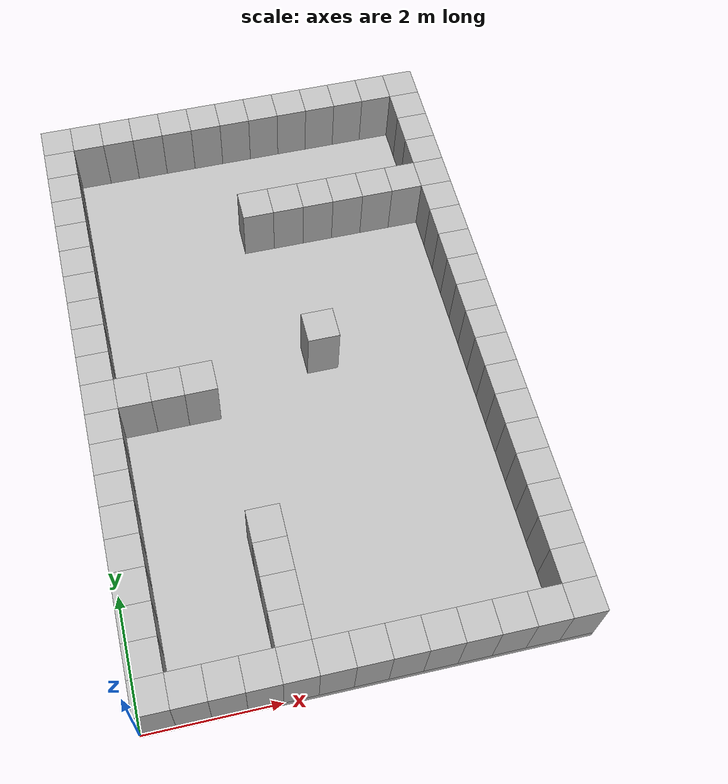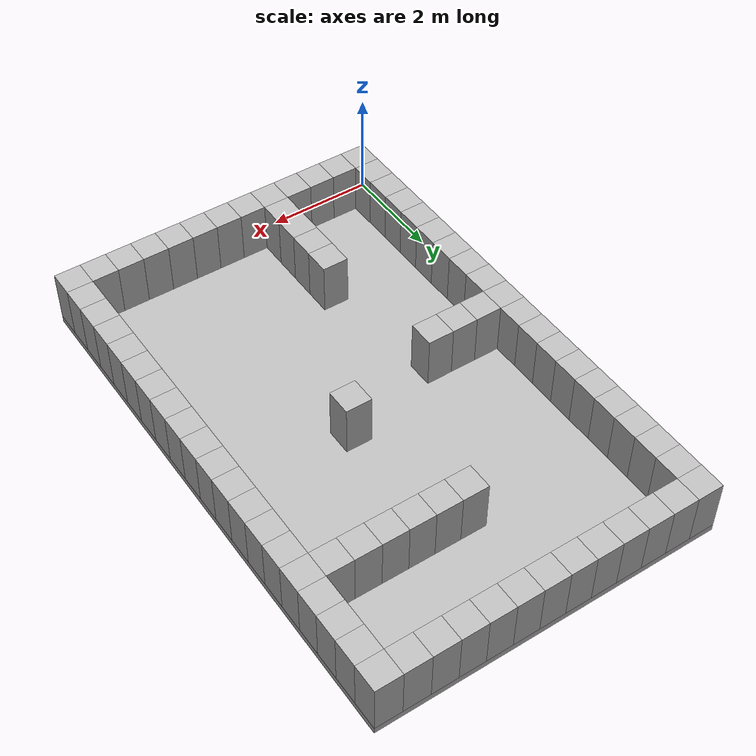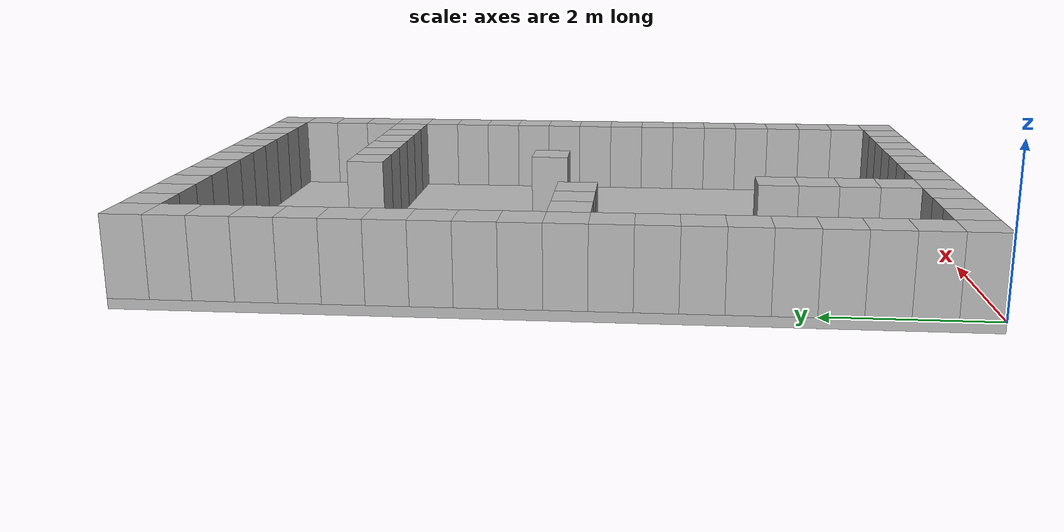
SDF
<sdf version="1.5">
  <model name="map">
    <static>1</static>
    <link name="map">
      <collision name="floor">
        <pose>3.25 5.0 -0.0625 0 0 0</pose>
        <geometry>
          <box>
            <size>6.5 10.0 0.125</size>
          </box>
        </geometry>
      </collision>
      <visual name="floor">
        <pose>3.25 5.0 -0.0625 0 0 0</pose>
        <geometry>
          <box>
            <size>6.5 10.0 0.125</size>
          </box>
        </geometry>
      </visual>
      <collision name="box_0_0">
        <pose>0.25 0.25 0.5 0 0 0</pose>
        <geometry>
          <box>
            <size>0.5 0.5 1.0</size>
          </box>
        </geometry>
      </collision>
      <visual name="box_0_0">
        <pose>0.25 0.25 0.5 0 0 0</pose>
        <geometry>
          <box>
            <size>0.5 0.5 1.0</size>
          </box>
        </geometry>
      </visual>
      <collision name="box_0_1">
        <pose>0.25 0.75 0.5 0 0 0</pose>
        <geometry>
          <box>
            <size>0.5 0.5 1.0</size>
          </box>
        </geometry>
      </collision>
      <visual name="box_0_1">
        <pose>0.25 0.75 0.5 0 0 0</pose>
        <geometry>
          <box>
            <size>0.5 0.5 1.0</size>
          </box>
        </geometry>
      </visual>
      <collision name="box_0_2">
        <pose>0.25 1.25 0.5 0 0 0</pose>
        <geometry>
          <box>
            <size>0.5 0.5 1.0</size>
          </box>
        </geometry>
      </collision>
      <visual name="box_0_2">
        <pose>0.25 1.25 0.5 0 0 0</pose>
        <geometry>
          <box>
            <size>0.5 0.5 1.0</size>
          </box>
        </geometry>
      </visual>
      <collision name="box_0_3">
        <pose>0.25 1.75 0.5 0 0 0</pose>
        <geometry>
          <box>
            <size>0.5 0.5 1.0</size>
          </box>
        </geometry>
      </collision>
      <visual name="box_0_3">
        <pose>0.25 1.75 0.5 0 0 0</pose>
        <geometry>
          <box>
            <size>0.5 0.5 1.0</size>
          </box>
        </geometry>
      </visual>
      <collision name="box_0_4">
        <pose>0.25 2.25 0.5 0 0 0</pose>
        <geometry>
          <box>
            <size>0.5 0.5 1.0</size>
          </box>
        </geometry>
      </collision>
      <visual name="box_0_4">
        <pose>0.25 2.25 0.5 0 0 0</pose>
        <geometry>
          <box>
            <size>0.5 0.5 1.0</size>
          </box>
        </geometry>
      </visual>
      <collision name="box_0_5">
        <pose>0.25 2.75 0.5 0 0 0</pose>
        <geometry>
          <box>
            <size>0.5 0.5 1.0</size>
          </box>
        </geometry>
      </collision>
      <visual name="box_0_5">
        <pose>0.25 2.75 0.5 0 0 0</pose>
        <geometry>
          <box>
            <size>0.5 0.5 1.0</size>
          </box>
        </geometry>
      </visual>
      <collision name="box_0_6">
        <pose>0.25 3.25 0.5 0 0 0</pose>
        <geometry>
          <box>
            <size>0.5 0.5 1.0</size>
          </box>
        </geometry>
      </collision>
      <visual name="box_0_6">
        <pose>0.25 3.25 0.5 0 0 0</pose>
        <geometry>
          <box>
            <size>0.5 0.5 1.0</size>
          </box>
        </geometry>
      </visual>
      <collision name="box_0_7">
        <pose>0.25 3.75 0.5 0 0 0</pose>
        <geometry>
          <box>
            <size>0.5 0.5 1.0</size>
          </box>
        </geometry>
      </collision>
      <visual name="box_0_7">
        <pose>0.25 3.75 0.5 0 0 0</pose>
        <geometry>
          <box>
            <size>0.5 0.5 1.0</size>
          </box>
        </geometry>
      </visual>
      <collision name="box_0_8">
        <pose>0.25 4.25 0.5 0 0 0</pose>
        <geometry>
          <box>
            <size>0.5 0.5 1.0</size>
          </box>
        </geometry>
      </collision>
      <visual name="box_0_8">
        <pose>0.25 4.25 0.5 0 0 0</pose>
        <geometry>
          <box>
            <size>0.5 0.5 1.0</size>
          </box>
        </geometry>
      </visual>
      <collision name="box_0_9">
        <pose>0.25 4.75 0.5 0 0 0</pose>
        <geometry>
          <box>
            <size>0.5 0.5 1.0</size>
          </box>
        </geometry>
      </collision>
      <visual name="box_0_9">
        <pose>0.25 4.75 0.5 0 0 0</pose>
        <geometry>
          <box>
            <size>0.5 0.5 1.0</size>
          </box>
        </geometry>
      </visual>
      <collision name="box_0_10">
        <pose>0.25 5.25 0.5 0 0 0</pose>
        <geometry>
          <box>
            <size>0.5 0.5 1.0</size>
          </box>
        </geometry>
      </collision>
      <visual name="box_0_10">
        <pose>0.25 5.25 0.5 0 0 0</pose>
        <geometry>
          <box>
            <size>0.5 0.5 1.0</size>
          </box>
        </geometry>
      </visual>
      <collision name="box_0_11">
        <pose>0.25 5.75 0.5 0 0 0</pose>
        <geometry>
          <box>
            <size>0.5 0.5 1.0</size>
          </box>
        </geometry>
      </collision>
      <visual name="box_0_11">
        <pose>0.25 5.75 0.5 0 0 0</pose>
        <geometry>
          <box>
            <size>0.5 0.5 1.0</size>
          </box>
        </geometry>
      </visual>
      <collision name="box_0_12">
        <pose>0.25 6.25 0.5 0 0 0</pose>
        <geometry>
          <box>
            <size>0.5 0.5 1.0</size>
          </box>
        </geometry>
      </collision>
      <visual name="box_0_12">
        <pose>0.25 6.25 0.5 0 0 0</pose>
        <geometry>
          <box>
            <size>0.5 0.5 1.0</size>
          </box>
        </geometry>
      </visual>
      <collision name="box_0_13">
        <pose>0.25 6.75 0.5 0 0 0</pose>
        <geometry>
          <box>
            <size>0.5 0.5 1.0</size>
          </box>
        </geometry>
      </collision>
      <visual name="box_0_13">
        <pose>0.25 6.75 0.5 0 0 0</pose>
        <geometry>
          <box>
            <size>0.5 0.5 1.0</size>
          </box>
        </geometry>
      </visual>
      <collision name="box_0_14">
        <pose>0.25 7.25 0.5 0 0 0</pose>
        <geometry>
          <box>
            <size>0.5 0.5 1.0</size>
          </box>
        </geometry>
      </collision>
      <visual name="box_0_14">
        <pose>0.25 7.25 0.5 0 0 0</pose>
        <geometry>
          <box>
            <size>0.5 0.5 1.0</size>
          </box>
        </geometry>
      </visual>
      <collision name="box_0_15">
        <pose>0.25 7.75 0.5 0 0 0</pose>
        <geometry>
          <box>
            <size>0.5 0.5 1.0</size>
          </box>
        </geometry>
      </collision>
      <visual name="box_0_15">
        <pose>0.25 7.75 0.5 0 0 0</pose>
        <geometry>
          <box>
            <size>0.5 0.5 1.0</size>
          </box>
        </geometry>
      </visual>
      <collision name="box_0_16">
        <pose>0.25 8.25 0.5 0 0 0</pose>
        <geometry>
          <box>
            <size>0.5 0.5 1.0</size>
          </box>
        </geometry>
      </collision>
      <visual name="box_0_16">
        <pose>0.25 8.25 0.5 0 0 0</pose>
        <geometry>
          <box>
            <size>0.5 0.5 1.0</size>
          </box>
        </geometry>
      </visual>
      <collision name="box_0_17">
        <pose>0.25 8.75 0.5 0 0 0</pose>
        <geometry>
          <box>
            <size>0.5 0.5 1.0</size>
          </box>
        </geometry>
      </collision>
      <visual name="box_0_17">
        <pose>0.25 8.75 0.5 0 0 0</pose>
        <geometry>
          <box>
            <size>0.5 0.5 1.0</size>
          </box>
        </geometry>
      </visual>
      <collision name="box_0_18">
        <pose>0.25 9.25 0.5 0 0 0</pose>
        <geometry>
          <box>
            <size>0.5 0.5 1.0</size>
          </box>
        </geometry>
      </collision>
      <visual name="box_0_18">
        <pose>0.25 9.25 0.5 0 0 0</pose>
        <geometry>
          <box>
            <size>0.5 0.5 1.0</size>
          </box>
        </geometry>
      </visual>
      <collision name="box_0_19">
        <pose>0.25 9.75 0.5 0 0 0</pose>
        <geometry>
          <box>
            <size>0.5 0.5 1.0</size>
          </box>
        </geometry>
      </collision>
      <visual name="box_0_19">
        <pose>0.25 9.75 0.5 0 0 0</pose>
        <geometry>
          <box>
            <size>0.5 0.5 1.0</size>
          </box>
        </geometry>
      </visual>
      <collision name="box_1_0">
        <pose>0.75 0.25 0.5 0 0 0</pose>
        <geometry>
          <box>
            <size>0.5 0.5 1.0</size>
          </box>
        </geometry>
      </collision>
      <visual name="box_1_0">
        <pose>0.75 0.25 0.5 0 0 0</pose>
        <geometry>
          <box>
            <size>0.5 0.5 1.0</size>
          </box>
        </geometry>
      </visual>
      <collision name="box_1_9">
        <pose>0.75 4.75 0.5 0 0 0</pose>
        <geometry>
          <box>
            <size>0.5 0.5 1.0</size>
          </box>
        </geometry>
      </collision>
      <visual name="box_1_9">
        <pose>0.75 4.75 0.5 0 0 0</pose>
        <geometry>
          <box>
            <size>0.5 0.5 1.0</size>
          </box>
        </geometry>
      </visual>
      <collision name="box_1_19">
        <pose>0.75 9.75 0.5 0 0 0</pose>
        <geometry>
          <box>
            <size>0.5 0.5 1.0</size>
          </box>
        </geometry>
      </collision>
      <visual name="box_1_19">
        <pose>0.75 9.75 0.5 0 0 0</pose>
        <geometry>
          <box>
            <size>0.5 0.5 1.0</size>
          </box>
        </geometry>
      </visual>
      <collision name="box_2_0">
        <pose>1.25 0.25 0.5 0 0 0</pose>
        <geometry>
          <box>
            <size>0.5 0.5 1.0</size>
          </box>
        </geometry>
      </collision>
      <visual name="box_2_0">
        <pose>1.25 0.25 0.5 0 0 0</pose>
        <geometry>
          <box>
            <size>0.5 0.5 1.0</size>
          </box>
        </geometry>
      </visual>
      <collision name="box_2_9">
        <pose>1.25 4.75 0.5 0 0 0</pose>
        <geometry>
          <box>
            <size>0.5 0.5 1.0</size>
          </box>
        </geometry>
      </collision>
      <visual name="box_2_9">
        <pose>1.25 4.75 0.5 0 0 0</pose>
        <geometry>
          <box>
            <size>0.5 0.5 1.0</size>
          </box>
        </geometry>
      </visual>
      <collision name="box_2_19">
        <pose>1.25 9.75 0.5 0 0 0</pose>
        <geometry>
          <box>
            <size>0.5 0.5 1.0</size>
          </box>
        </geometry>
      </collision>
      <visual name="box_2_19">
        <pose>1.25 9.75 0.5 0 0 0</pose>
        <geometry>
          <box>
            <size>0.5 0.5 1.0</size>
          </box>
        </geometry>
      </visual>
      <collision name="box_3_0">
        <pose>1.75 0.25 0.5 0 0 0</pose>
        <geometry>
          <box>
            <size>0.5 0.5 1.0</size>
          </box>
        </geometry>
      </collision>
      <visual name="box_3_0">
        <pose>1.75 0.25 0.5 0 0 0</pose>
        <geometry>
          <box>
            <size>0.5 0.5 1.0</size>
          </box>
        </geometry>
      </visual>
      <collision name="box_3_9">
        <pose>1.75 4.75 0.5 0 0 0</pose>
        <geometry>
          <box>
            <size>0.5 0.5 1.0</size>
          </box>
        </geometry>
      </collision>
      <visual name="box_3_9">
        <pose>1.75 4.75 0.5 0 0 0</pose>
        <geometry>
          <box>
            <size>0.5 0.5 1.0</size>
          </box>
        </geometry>
      </visual>
      <collision name="box_3_19">
        <pose>1.75 9.75 0.5 0 0 0</pose>
        <geometry>
          <box>
            <size>0.5 0.5 1.0</size>
          </box>
        </geometry>
      </collision>
      <visual name="box_3_19">
        <pose>1.75 9.75 0.5 0 0 0</pose>
        <geometry>
          <box>
            <size>0.5 0.5 1.0</size>
          </box>
        </geometry>
      </visual>
      <collision name="box_4_0">
        <pose>2.25 0.25 0.5 0 0 0</pose>
        <geometry>
          <box>
            <size>0.5 0.5 1.0</size>
          </box>
        </geometry>
      </collision>
      <visual name="box_4_0">
        <pose>2.25 0.25 0.5 0 0 0</pose>
        <geometry>
          <box>
            <size>0.5 0.5 1.0</size>
          </box>
        </geometry>
      </visual>
      <collision name="box_4_1">
        <pose>2.25 0.75 0.5 0 0 0</pose>
        <geometry>
          <box>
            <size>0.5 0.5 1.0</size>
          </box>
        </geometry>
      </collision>
      <visual name="box_4_1">
        <pose>2.25 0.75 0.5 0 0 0</pose>
        <geometry>
          <box>
            <size>0.5 0.5 1.0</size>
          </box>
        </geometry>
      </visual>
      <collision name="box_4_2">
        <pose>2.25 1.25 0.5 0 0 0</pose>
        <geometry>
          <box>
            <size>0.5 0.5 1.0</size>
          </box>
        </geometry>
      </collision>
      <visual name="box_4_2">
        <pose>2.25 1.25 0.5 0 0 0</pose>
        <geometry>
          <box>
            <size>0.5 0.5 1.0</size>
          </box>
        </geometry>
      </visual>
      <collision name="box_4_3">
        <pose>2.25 1.75 0.5 0 0 0</pose>
        <geometry>
          <box>
            <size>0.5 0.5 1.0</size>
          </box>
        </geometry>
      </collision>
      <visual name="box_4_3">
        <pose>2.25 1.75 0.5 0 0 0</pose>
        <geometry>
          <box>
            <size>0.5 0.5 1.0</size>
          </box>
        </geometry>
      </visual>
      <collision name="box_4_4">
        <pose>2.25 2.25 0.5 0 0 0</pose>
        <geometry>
          <box>
            <size>0.5 0.5 1.0</size>
          </box>
        </geometry>
      </collision>
      <visual name="box_4_4">
        <pose>2.25 2.25 0.5 0 0 0</pose>
        <geometry>
          <box>
            <size>0.5 0.5 1.0</size>
          </box>
        </geometry>
      </visual>
      <collision name="box_4_19">
        <pose>2.25 9.75 0.5 0 0 0</pose>
        <geometry>
          <box>
            <size>0.5 0.5 1.0</size>
          </box>
        </geometry>
      </collision>
      <visual name="box_4_19">
        <pose>2.25 9.75 0.5 0 0 0</pose>
        <geometry>
          <box>
            <size>0.5 0.5 1.0</size>
          </box>
        </geometry>
      </visual>
      <collision name="box_5_0">
        <pose>2.75 0.25 0.5 0 0 0</pose>
        <geometry>
          <box>
            <size>0.5 0.5 1.0</size>
          </box>
        </geometry>
      </collision>
      <visual name="box_5_0">
        <pose>2.75 0.25 0.5 0 0 0</pose>
        <geometry>
          <box>
            <size>0.5 0.5 1.0</size>
          </box>
        </geometry>
      </visual>
      <collision name="box_5_19">
        <pose>2.75 9.75 0.5 0 0 0</pose>
        <geometry>
          <box>
            <size>0.5 0.5 1.0</size>
          </box>
        </geometry>
      </collision>
      <visual name="box_5_19">
        <pose>2.75 9.75 0.5 0 0 0</pose>
        <geometry>
          <box>
            <size>0.5 0.5 1.0</size>
          </box>
        </geometry>
      </visual>
      <collision name="box_6_0">
        <pose>3.25 0.25 0.5 0 0 0</pose>
        <geometry>
          <box>
            <size>0.5 0.5 1.0</size>
          </box>
        </geometry>
      </collision>
      <visual name="box_6_0">
        <pose>3.25 0.25 0.5 0 0 0</pose>
        <geometry>
          <box>
            <size>0.5 0.5 1.0</size>
          </box>
        </geometry>
      </visual>
      <collision name="box_6_15">
        <pose>3.25 7.75 0.5 0 0 0</pose>
        <geometry>
          <box>
            <size>0.5 0.5 1.0</size>
          </box>
        </geometry>
      </collision>
      <visual name="box_6_15">
        <pose>3.25 7.75 0.5 0 0 0</pose>
        <geometry>
          <box>
            <size>0.5 0.5 1.0</size>
          </box>
        </geometry>
      </visual>
      <collision name="box_6_19">
        <pose>3.25 9.75 0.5 0 0 0</pose>
        <geometry>
          <box>
            <size>0.5 0.5 1.0</size>
          </box>
        </geometry>
      </collision>
      <visual name="box_6_19">
        <pose>3.25 9.75 0.5 0 0 0</pose>
        <geometry>
          <box>
            <size>0.5 0.5 1.0</size>
          </box>
        </geometry>
      </visual>
      <collision name="box_7_0">
        <pose>3.75 0.25 0.5 0 0 0</pose>
        <geometry>
          <box>
            <size>0.5 0.5 1.0</size>
          </box>
        </geometry>
      </collision>
      <visual name="box_7_0">
        <pose>3.75 0.25 0.5 0 0 0</pose>
        <geometry>
          <box>
            <size>0.5 0.5 1.0</size>
          </box>
        </geometry>
      </visual>
      <collision name="box_7_10">
        <pose>3.75 5.25 0.5 0 0 0</pose>
        <geometry>
          <box>
            <size>0.5 0.5 1.0</size>
          </box>
        </geometry>
      </collision>
      <visual name="box_7_10">
        <pose>3.75 5.25 0.5 0 0 0</pose>
        <geometry>
          <box>
            <size>0.5 0.5 1.0</size>
          </box>
        </geometry>
      </visual>
      <collision name="box_7_15">
        <pose>3.75 7.75 0.5 0 0 0</pose>
        <geometry>
          <box>
            <size>0.5 0.5 1.0</size>
          </box>
        </geometry>
      </collision>
      <visual name="box_7_15">
        <pose>3.75 7.75 0.5 0 0 0</pose>
        <geometry>
          <box>
            <size>0.5 0.5 1.0</size>
          </box>
        </geometry>
      </visual>
      <collision name="box_7_19">
        <pose>3.75 9.75 0.5 0 0 0</pose>
        <geometry>
          <box>
            <size>0.5 0.5 1.0</size>
          </box>
        </geometry>
      </collision>
      <visual name="box_7_19">
        <pose>3.75 9.75 0.5 0 0 0</pose>
        <geometry>
          <box>
            <size>0.5 0.5 1.0</size>
          </box>
        </geometry>
      </visual>
      <collision name="box_8_0">
        <pose>4.25 0.25 0.5 0 0 0</pose>
        <geometry>
          <box>
            <size>0.5 0.5 1.0</size>
          </box>
        </geometry>
      </collision>
      <visual name="box_8_0">
        <pose>4.25 0.25 0.5 0 0 0</pose>
        <geometry>
          <box>
            <size>0.5 0.5 1.0</size>
          </box>
        </geometry>
      </visual>
      <collision name="box_8_15">
        <pose>4.25 7.75 0.5 0 0 0</pose>
        <geometry>
          <box>
            <size>0.5 0.5 1.0</size>
          </box>
        </geometry>
      </collision>
      <visual name="box_8_15">
        <pose>4.25 7.75 0.5 0 0 0</pose>
        <geometry>
          <box>
            <size>0.5 0.5 1.0</size>
          </box>
        </geometry>
      </visual>
      <collision name="box_8_19">
        <pose>4.25 9.75 0.5 0 0 0</pose>
        <geometry>
          <box>
            <size>0.5 0.5 1.0</size>
          </box>
        </geometry>
      </collision>
      <visual name="box_8_19">
        <pose>4.25 9.75 0.5 0 0 0</pose>
        <geometry>
          <box>
            <size>0.5 0.5 1.0</size>
          </box>
        </geometry>
      </visual>
      <collision name="box_9_0">
        <pose>4.75 0.25 0.5 0 0 0</pose>
        <geometry>
          <box>
            <size>0.5 0.5 1.0</size>
          </box>
        </geometry>
      </collision>
      <visual name="box_9_0">
        <pose>4.75 0.25 0.5 0 0 0</pose>
        <geometry>
          <box>
            <size>0.5 0.5 1.0</size>
          </box>
        </geometry>
      </visual>
      <collision name="box_9_15">
        <pose>4.75 7.75 0.5 0 0 0</pose>
        <geometry>
          <box>
            <size>0.5 0.5 1.0</size>
          </box>
        </geometry>
      </collision>
      <visual name="box_9_15">
        <pose>4.75 7.75 0.5 0 0 0</pose>
        <geometry>
          <box>
            <size>0.5 0.5 1.0</size>
          </box>
        </geometry>
      </visual>
      <collision name="box_9_19">
        <pose>4.75 9.75 0.5 0 0 0</pose>
        <geometry>
          <box>
            <size>0.5 0.5 1.0</size>
          </box>
        </geometry>
      </collision>
      <visual name="box_9_19">
        <pose>4.75 9.75 0.5 0 0 0</pose>
        <geometry>
          <box>
            <size>0.5 0.5 1.0</size>
          </box>
        </geometry>
      </visual>
      <collision name="box_10_0">
        <pose>5.25 0.25 0.5 0 0 0</pose>
        <geometry>
          <box>
            <size>0.5 0.5 1.0</size>
          </box>
        </geometry>
      </collision>
      <visual name="box_10_0">
        <pose>5.25 0.25 0.5 0 0 0</pose>
        <geometry>
          <box>
            <size>0.5 0.5 1.0</size>
          </box>
        </geometry>
      </visual>
      <collision name="box_10_15">
        <pose>5.25 7.75 0.5 0 0 0</pose>
        <geometry>
          <box>
            <size>0.5 0.5 1.0</size>
          </box>
        </geometry>
      </collision>
      <visual name="box_10_15">
        <pose>5.25 7.75 0.5 0 0 0</pose>
        <geometry>
          <box>
            <size>0.5 0.5 1.0</size>
          </box>
        </geometry>
      </visual>
      <collision name="box_10_19">
        <pose>5.25 9.75 0.5 0 0 0</pose>
        <geometry>
          <box>
            <size>0.5 0.5 1.0</size>
          </box>
        </geometry>
      </collision>
      <visual name="box_10_19">
        <pose>5.25 9.75 0.5 0 0 0</pose>
        <geometry>
          <box>
            <size>0.5 0.5 1.0</size>
          </box>
        </geometry>
      </visual>
      <collision name="box_11_0">
        <pose>5.75 0.25 0.5 0 0 0</pose>
        <geometry>
          <box>
            <size>0.5 0.5 1.0</size>
          </box>
        </geometry>
      </collision>
      <visual name="box_11_0">
        <pose>5.75 0.25 0.5 0 0 0</pose>
        <geometry>
          <box>
            <size>0.5 0.5 1.0</size>
          </box>
        </geometry>
      </visual>
      <collision name="box_11_15">
        <pose>5.75 7.75 0.5 0 0 0</pose>
        <geometry>
          <box>
            <size>0.5 0.5 1.0</size>
          </box>
        </geometry>
      </collision>
      <visual name="box_11_15">
        <pose>5.75 7.75 0.5 0 0 0</pose>
        <geometry>
          <box>
            <size>0.5 0.5 1.0</size>
          </box>
        </geometry>
      </visual>
      <collision name="box_11_19">
        <pose>5.75 9.75 0.5 0 0 0</pose>
        <geometry>
          <box>
            <size>0.5 0.5 1.0</size>
          </box>
        </geometry>
      </collision>
      <visual name="box_11_19">
        <pose>5.75 9.75 0.5 0 0 0</pose>
        <geometry>
          <box>
            <size>0.5 0.5 1.0</size>
          </box>
        </geometry>
      </visual>
      <collision name="box_12_0">
        <pose>6.25 0.25 0.5 0 0 0</pose>
        <geometry>
          <box>
            <size>0.5 0.5 1.0</size>
          </box>
        </geometry>
      </collision>
      <visual name="box_12_0">
        <pose>6.25 0.25 0.5 0 0 0</pose>
        <geometry>
          <box>
            <size>0.5 0.5 1.0</size>
          </box>
        </geometry>
      </visual>
      <collision name="box_12_1">
        <pose>6.25 0.75 0.5 0 0 0</pose>
        <geometry>
          <box>
            <size>0.5 0.5 1.0</size>
          </box>
        </geometry>
      </collision>
      <visual name="box_12_1">
        <pose>6.25 0.75 0.5 0 0 0</pose>
        <geometry>
          <box>
            <size>0.5 0.5 1.0</size>
          </box>
        </geometry>
      </visual>
      <collision name="box_12_2">
        <pose>6.25 1.25 0.5 0 0 0</pose>
        <geometry>
          <box>
            <size>0.5 0.5 1.0</size>
          </box>
        </geometry>
      </collision>
      <visual name="box_12_2">
        <pose>6.25 1.25 0.5 0 0 0</pose>
        <geometry>
          <box>
            <size>0.5 0.5 1.0</size>
          </box>
        </geometry>
      </visual>
      <collision name="box_12_3">
        <pose>6.25 1.75 0.5 0 0 0</pose>
        <geometry>
          <box>
            <size>0.5 0.5 1.0</size>
          </box>
        </geometry>
      </collision>
      <visual name="box_12_3">
        <pose>6.25 1.75 0.5 0 0 0</pose>
        <geometry>
          <box>
            <size>0.5 0.5 1.0</size>
          </box>
        </geometry>
      </visual>
      <collision name="box_12_4">
        <pose>6.25 2.25 0.5 0 0 0</pose>
        <geometry>
          <box>
            <size>0.5 0.5 1.0</size>
          </box>
        </geometry>
      </collision>
      <visual name="box_12_4">
        <pose>6.25 2.25 0.5 0 0 0</pose>
        <geometry>
          <box>
            <size>0.5 0.5 1.0</size>
          </box>
        </geometry>
      </visual>
      <collision name="box_12_5">
        <pose>6.25 2.75 0.5 0 0 0</pose>
        <geometry>
          <box>
            <size>0.5 0.5 1.0</size>
          </box>
        </geometry>
      </collision>
      <visual name="box_12_5">
        <pose>6.25 2.75 0.5 0 0 0</pose>
        <geometry>
          <box>
            <size>0.5 0.5 1.0</size>
          </box>
        </geometry>
      </visual>
      <collision name="box_12_6">
        <pose>6.25 3.25 0.5 0 0 0</pose>
        <geometry>
          <box>
            <size>0.5 0.5 1.0</size>
          </box>
        </geometry>
      </collision>
      <visual name="box_12_6">
        <pose>6.25 3.25 0.5 0 0 0</pose>
        <geometry>
          <box>
            <size>0.5 0.5 1.0</size>
          </box>
        </geometry>
      </visual>
      <collision name="box_12_7">
        <pose>6.25 3.75 0.5 0 0 0</pose>
        <geometry>
          <box>
            <size>0.5 0.5 1.0</size>
          </box>
        </geometry>
      </collision>
      <visual name="box_12_7">
        <pose>6.25 3.75 0.5 0 0 0</pose>
        <geometry>
          <box>
            <size>0.5 0.5 1.0</size>
          </box>
        </geometry>
      </visual>
      <collision name="box_12_8">
        <pose>6.25 4.25 0.5 0 0 0</pose>
        <geometry>
          <box>
            <size>0.5 0.5 1.0</size>
          </box>
        </geometry>
      </collision>
      <visual name="box_12_8">
        <pose>6.25 4.25 0.5 0 0 0</pose>
        <geometry>
          <box>
            <size>0.5 0.5 1.0</size>
          </box>
        </geometry>
      </visual>
      <collision name="box_12_9">
        <pose>6.25 4.75 0.5 0 0 0</pose>
        <geometry>
          <box>
            <size>0.5 0.5 1.0</size>
          </box>
        </geometry>
      </collision>
      <visual name="box_12_9">
        <pose>6.25 4.75 0.5 0 0 0</pose>
        <geometry>
          <box>
            <size>0.5 0.5 1.0</size>
          </box>
        </geometry>
      </visual>
      <collision name="box_12_10">
        <pose>6.25 5.25 0.5 0 0 0</pose>
        <geometry>
          <box>
            <size>0.5 0.5 1.0</size>
          </box>
        </geometry>
      </collision>
      <visual name="box_12_10">
        <pose>6.25 5.25 0.5 0 0 0</pose>
        <geometry>
          <box>
            <size>0.5 0.5 1.0</size>
          </box>
        </geometry>
      </visual>
      <collision name="box_12_11">
        <pose>6.25 5.75 0.5 0 0 0</pose>
        <geometry>
          <box>
            <size>0.5 0.5 1.0</size>
          </box>
        </geometry>
      </collision>
      <visual name="box_12_11">
        <pose>6.25 5.75 0.5 0 0 0</pose>
        <geometry>
          <box>
            <size>0.5 0.5 1.0</size>
          </box>
        </geometry>
      </visual>
      <collision name="box_12_12">
        <pose>6.25 6.25 0.5 0 0 0</pose>
        <geometry>
          <box>
            <size>0.5 0.5 1.0</size>
          </box>
        </geometry>
      </collision>
      <visual name="box_12_12">
        <pose>6.25 6.25 0.5 0 0 0</pose>
        <geometry>
          <box>
            <size>0.5 0.5 1.0</size>
          </box>
        </geometry>
      </visual>
      <collision name="box_12_13">
        <pose>6.25 6.75 0.5 0 0 0</pose>
        <geometry>
          <box>
            <size>0.5 0.5 1.0</size>
          </box>
        </geometry>
      </collision>
      <visual name="box_12_13">
        <pose>6.25 6.75 0.5 0 0 0</pose>
        <geometry>
          <box>
            <size>0.5 0.5 1.0</size>
          </box>
        </geometry>
      </visual>
      <collision name="box_12_14">
        <pose>6.25 7.25 0.5 0 0 0</pose>
        <geometry>
          <box>
            <size>0.5 0.5 1.0</size>
          </box>
        </geometry>
      </collision>
      <visual name="box_12_14">
        <pose>6.25 7.25 0.5 0 0 0</pose>
        <geometry>
          <box>
            <size>0.5 0.5 1.0</size>
          </box>
        </geometry>
      </visual>
      <collision name="box_12_15">
        <pose>6.25 7.75 0.5 0 0 0</pose>
        <geometry>
          <box>
            <size>0.5 0.5 1.0</size>
          </box>
        </geometry>
      </collision>
      <visual name="box_12_15">
        <pose>6.25 7.75 0.5 0 0 0</pose>
        <geometry>
          <box>
            <size>0.5 0.5 1.0</size>
          </box>
        </geometry>
      </visual>
      <collision name="box_12_16">
        <pose>6.25 8.25 0.5 0 0 0</pose>
        <geometry>
          <box>
            <size>0.5 0.5 1.0</size>
          </box>
        </geometry>
      </collision>
      <visual name="box_12_16">
        <pose>6.25 8.25 0.5 0 0 0</pose>
        <geometry>
          <box>
            <size>0.5 0.5 1.0</size>
          </box>
        </geometry>
      </visual>
      <collision name="box_12_17">
        <pose>6.25 8.75 0.5 0 0 0</pose>
        <geometry>
          <box>
            <size>0.5 0.5 1.0</size>
          </box>
        </geometry>
      </collision>
      <visual name="box_12_17">
        <pose>6.25 8.75 0.5 0 0 0</pose>
        <geometry>
          <box>
            <size>0.5 0.5 1.0</size>
          </box>
        </geometry>
      </visual>
      <collision name="box_12_18">
        <pose>6.25 9.25 0.5 0 0 0</pose>
        <geometry>
          <box>
            <size>0.5 0.5 1.0</size>
          </box>
        </geometry>
      </collision>
      <visual name="box_12_18">
        <pose>6.25 9.25 0.5 0 0 0</pose>
        <geometry>
          <box>
            <size>0.5 0.5 1.0</size>
          </box>
        </geometry>
      </visual>
      <collision name="box_12_19">
        <pose>6.25 9.75 0.5 0 0 0</pose>
        <geometry>
          <box>
            <size>0.5 0.5 1.0</size>
          </box>
        </geometry>
      </collision>
      <visual name="box_12_19">
        <pose>6.25 9.75 0.5 0 0 0</pose>
        <geometry>
          <box>
            <size>0.5 0.5 1.0</size>
          </box>
        </geometry>
      </visual>
    </link>
  </model>
</sdf>
